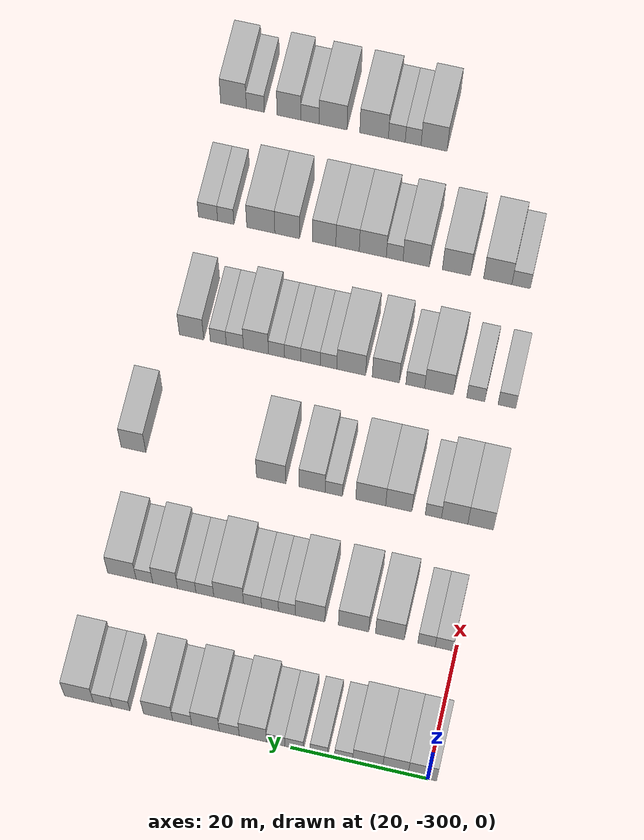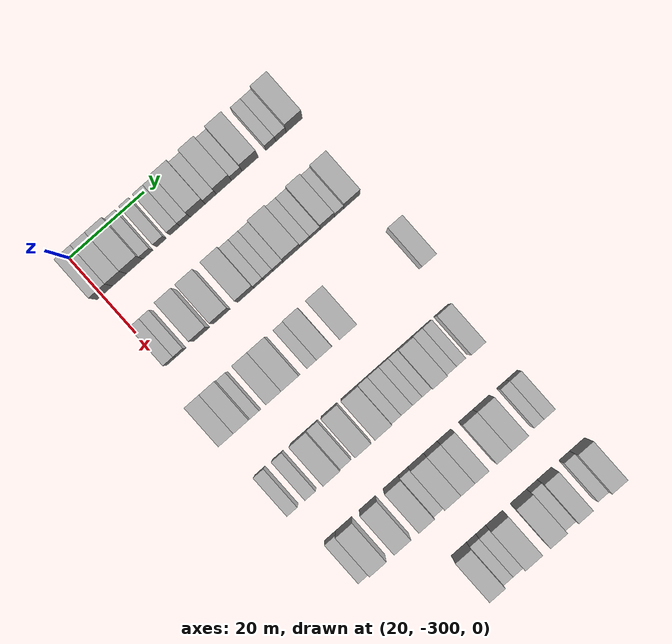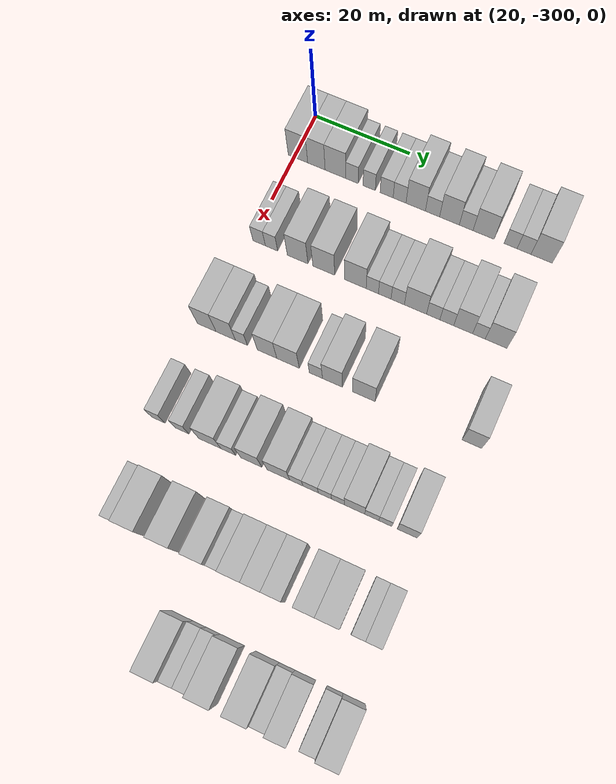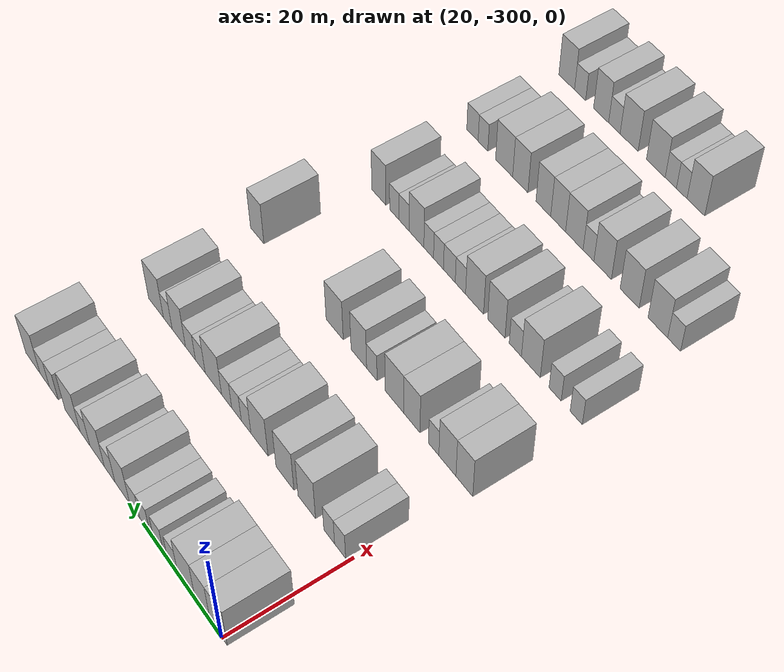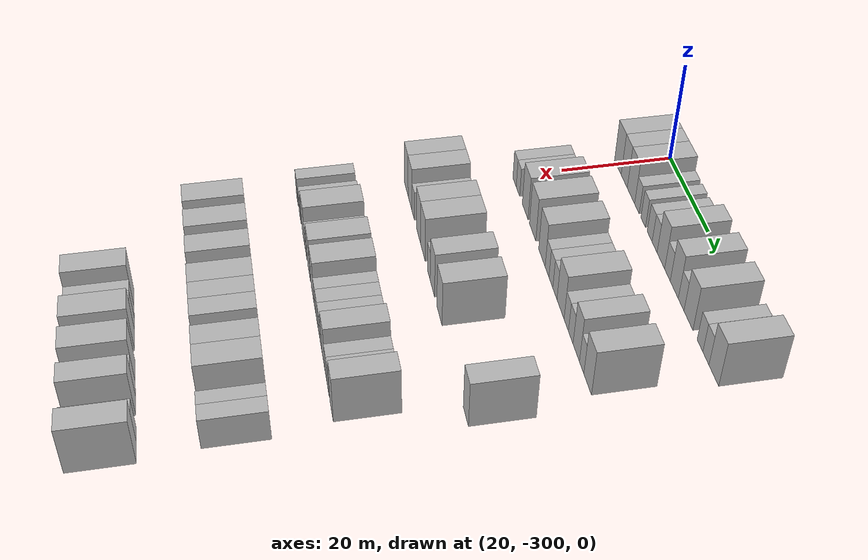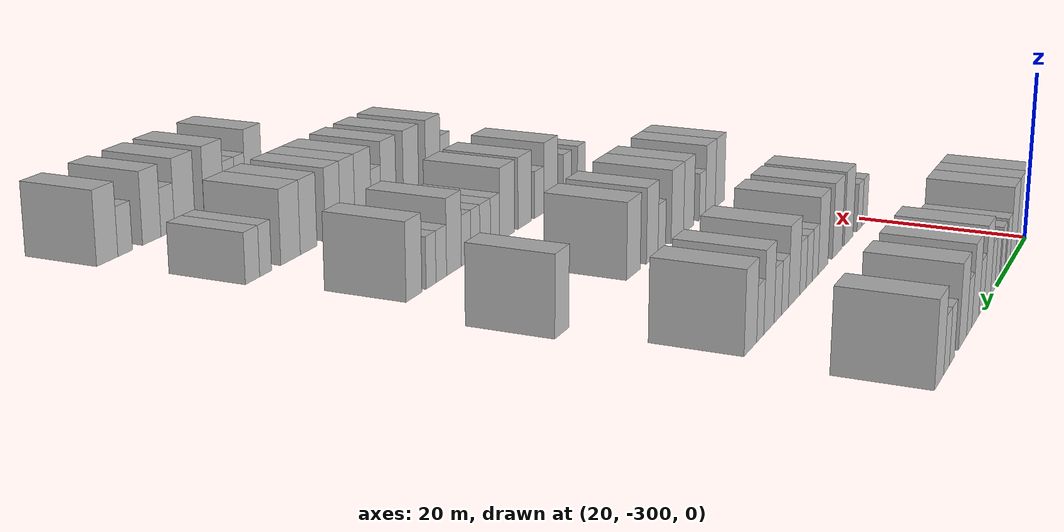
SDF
<sdf version="1.6">
 <world name="default">
  <model name="building_10">
   <static>1</static>
   <pose>25.0000 -299.1672 0 0.000000 0.000000 0.000000</pose>
   <link name="link">
    <pose>0 0 4.50 0 0 0</pose>
    <collision name="collision"><geometry><box><size>10.0000 4.1476 9.0000</size></box></geometry></collision>
    <visual name="visual">
     <cast_shadows>0</cast_shadows>
     <geometry><box><size>10.0000 4.1476 9.0000</size></box></geometry>
     <material>
      <script>
       <uri>model://HANNAS_wall/materials/scripts</uri>
       <uri>model://HANNAS_wall/materials/textures</uri>
       <name>vrc/HANNAS_wall</name>
      </script>
     </material>
    </visual>
   </link>
  </model>
  <model name="building_11">
   <static>1</static>
   <pose>25.0000 -295.2406 0 0.000000 0.000000 0.000000</pose>
   <link name="link">
    <pose>0 0 4.50 0 0 0</pose>
    <collision name="collision"><geometry><box><size>10.0000 3.7056 9.0000</size></box></geometry></collision>
    <visual name="visual">
     <cast_shadows>0</cast_shadows>
     <geometry><box><size>10.0000 3.7056 9.0000</size></box></geometry>
     <material>
      <script>
       <uri>model://HANNAS_wall/materials/scripts</uri>
       <uri>model://HANNAS_wall/materials/textures</uri>
       <name>vrc/HANNAS_wall</name>
      </script>
     </material>
    </visual>
   </link>
  </model>
  <model name="building_12">
   <static>1</static>
   <pose>25.0000 -291.1981 0 0.000000 0.000000 0.000000</pose>
   <link name="link">
    <pose>0 0 4.50 0 0 0</pose>
    <collision name="collision"><geometry><box><size>10.0000 4.3795 9.0000</size></box></geometry></collision>
    <visual name="visual">
     <cast_shadows>0</cast_shadows>
     <geometry><box><size>10.0000 4.3795 9.0000</size></box></geometry>
     <material>
      <script>
       <uri>model://HANNAS_wall/materials/scripts</uri>
       <uri>model://HANNAS_wall/materials/textures</uri>
       <name>vrc/HANNAS_wall</name>
      </script>
     </material>
    </visual>
   </link>
  </model>
  <model name="building_13">
   <static>1</static>
   <pose>25.0000 -287.6931 0 0.000000 0.000000 0.000000</pose>
   <link name="link">
    <pose>0 0 3.00 0 0 0</pose>
    <collision name="collision"><geometry><box><size>10.0000 2.6304 6.0000</size></box></geometry></collision>
    <visual name="visual">
     <cast_shadows>0</cast_shadows>
     <geometry><box><size>10.0000 2.6304 6.0000</size></box></geometry>
     <material>
      <script>
       <uri>model://HANNAS_wall/materials/scripts</uri>
       <uri>model://HANNAS_wall/materials/textures</uri>
       <name>vrc/HANNAS_wall</name>
      </script>
     </material>
    </visual>
   </link>
  </model>
  <model name="building_14">
   <static>1</static>
   <pose>25.0000 -284.0967 0 0.000000 0.000000 0.000000</pose>
   <link name="link">
    <pose>0 0 3.00 0 0 0</pose>
    <collision name="collision"><geometry><box><size>10.0000 2.5624 6.0000</size></box></geometry></collision>
    <visual name="visual">
     <cast_shadows>0</cast_shadows>
     <geometry><box><size>10.0000 2.5624 6.0000</size></box></geometry>
     <material>
      <script>
       <uri>model://HANNAS_wall/materials/scripts</uri>
       <uri>model://HANNAS_wall/materials/textures</uri>
       <name>vrc/HANNAS_wall</name>
      </script>
     </material>
    </visual>
   </link>
  </model>
  <model name="building_15">
   <static>1</static>
   <pose>25.0000 -280.4607 0 0.000000 0.000000 0.000000</pose>
   <link name="link">
    <pose>0 0 3.00 0 0 0</pose>
    <collision name="collision"><geometry><box><size>10.0000 2.7096 6.0000</size></box></geometry></collision>
    <visual name="visual">
     <cast_shadows>0</cast_shadows>
     <geometry><box><size>10.0000 2.7096 6.0000</size></box></geometry>
     <material>
      <script>
       <uri>model://HANNAS_wall/materials/scripts</uri>
       <uri>model://HANNAS_wall/materials/textures</uri>
       <name>vrc/HANNAS_wall</name>
      </script>
     </material>
    </visual>
   </link>
  </model>
  <model name="building_16">
   <static>1</static>
   <pose>25.0000 -277.7603 0 0.000000 0.000000 0.000000</pose>
   <link name="link">
    <pose>0 0 3.00 0 0 0</pose>
    <collision name="collision"><geometry><box><size>10.0000 2.6912 6.0000</size></box></geometry></collision>
    <visual name="visual">
     <cast_shadows>0</cast_shadows>
     <geometry><box><size>10.0000 2.6912 6.0000</size></box></geometry>
     <material>
      <script>
       <uri>model://HANNAS_wall/materials/scripts</uri>
       <uri>model://HANNAS_wall/materials/textures</uri>
       <name>vrc/HANNAS_wall</name>
      </script>
     </material>
    </visual>
   </link>
  </model>
  <model name="building_17">
   <static>1</static>
   <pose>25.0000 -274.4151 0 0.000000 0.000000 0.000000</pose>
   <link name="link">
    <pose>0 0 4.50 0 0 0</pose>
    <collision name="collision"><geometry><box><size>10.0000 3.9991 9.0000</size></box></geometry></collision>
    <visual name="visual">
     <cast_shadows>0</cast_shadows>
     <geometry><box><size>10.0000 3.9991 9.0000</size></box></geometry>
     <material>
      <script>
       <uri>model://HANNAS_wall/materials/scripts</uri>
       <uri>model://HANNAS_wall/materials/textures</uri>
       <name>vrc/HANNAS_wall</name>
      </script>
     </material>
    </visual>
   </link>
  </model>
  <model name="building_18">
   <static>1</static>
   <pose>25.0000 -270.9546 0 0.000000 0.000000 0.000000</pose>
   <link name="link">
    <pose>0 0 3.00 0 0 0</pose>
    <collision name="collision"><geometry><box><size>10.0000 2.9220 6.0000</size></box></geometry></collision>
    <visual name="visual">
     <cast_shadows>0</cast_shadows>
     <geometry><box><size>10.0000 2.9220 6.0000</size></box></geometry>
     <material>
      <script>
       <uri>model://HANNAS_wall/materials/scripts</uri>
       <uri>model://HANNAS_wall/materials/textures</uri>
       <name>vrc/HANNAS_wall</name>
      </script>
     </material>
    </visual>
   </link>
  </model>
  <model name="building_19">
   <static>1</static>
   <pose>25.0000 -267.4674 0 0.000000 0.000000 0.000000</pose>
   <link name="link">
    <pose>0 0 4.50 0 0 0</pose>
    <collision name="collision"><geometry><box><size>10.0000 4.0524 9.0000</size></box></geometry></collision>
    <visual name="visual">
     <cast_shadows>0</cast_shadows>
     <geometry><box><size>10.0000 4.0524 9.0000</size></box></geometry>
     <material>
      <script>
       <uri>model://HANNAS_wall/materials/scripts</uri>
       <uri>model://HANNAS_wall/materials/textures</uri>
       <name>vrc/HANNAS_wall</name>
      </script>
     </material>
    </visual>
   </link>
  </model>
  <model name="building_20">
   <static>1</static>
   <pose>25.0000 -264.0373 0 0.000000 0.000000 0.000000</pose>
   <link name="link">
    <pose>0 0 3.00 0 0 0</pose>
    <collision name="collision"><geometry><box><size>10.0000 2.8078 6.0000</size></box></geometry></collision>
    <visual name="visual">
     <cast_shadows>0</cast_shadows>
     <geometry><box><size>10.0000 2.8078 6.0000</size></box></geometry>
     <material>
      <script>
       <uri>model://HANNAS_wall/materials/scripts</uri>
       <uri>model://HANNAS_wall/materials/textures</uri>
       <name>vrc/HANNAS_wall</name>
      </script>
     </material>
    </visual>
   </link>
  </model>
  <model name="building_21">
   <static>1</static>
   <pose>25.0000 -260.4896 0 0.000000 0.000000 0.000000</pose>
   <link name="link">
    <pose>0 0 4.50 0 0 0</pose>
    <collision name="collision"><geometry><box><size>10.0000 4.2876 9.0000</size></box></geometry></collision>
    <visual name="visual">
     <cast_shadows>0</cast_shadows>
     <geometry><box><size>10.0000 4.2876 9.0000</size></box></geometry>
     <material>
      <script>
       <uri>model://HANNAS_wall/materials/scripts</uri>
       <uri>model://HANNAS_wall/materials/textures</uri>
       <name>vrc/HANNAS_wall</name>
      </script>
     </material>
    </visual>
   </link>
  </model>
  <model name="building_22">
   <static>1</static>
   <pose>25.0000 -255.0336 0 0.000000 0.000000 0.000000</pose>
   <link name="link">
    <pose>0 0 3.00 0 0 0</pose>
    <collision name="collision"><geometry><box><size>10.0000 2.6244 6.0000</size></box></geometry></collision>
    <visual name="visual">
     <cast_shadows>0</cast_shadows>
     <geometry><box><size>10.0000 2.6244 6.0000</size></box></geometry>
     <material>
      <script>
       <uri>model://HANNAS_wall/materials/scripts</uri>
       <uri>model://HANNAS_wall/materials/textures</uri>
       <name>vrc/HANNAS_wall</name>
      </script>
     </material>
    </visual>
   </link>
  </model>
  <model name="building_23">
   <static>1</static>
   <pose>25.0000 -252.3380 0 0.000000 0.000000 0.000000</pose>
   <link name="link">
    <pose>0 0 3.00 0 0 0</pose>
    <collision name="collision"><geometry><box><size>10.0000 2.7667 6.0000</size></box></geometry></collision>
    <visual name="visual">
     <cast_shadows>0</cast_shadows>
     <geometry><box><size>10.0000 2.7667 6.0000</size></box></geometry>
     <material>
      <script>
       <uri>model://HANNAS_wall/materials/scripts</uri>
       <uri>model://HANNAS_wall/materials/textures</uri>
       <name>vrc/HANNAS_wall</name>
      </script>
     </material>
    </visual>
   </link>
  </model>
  <model name="building_24">
   <static>1</static>
   <pose>25.0000 -248.8088 0 0.000000 0.000000 0.000000</pose>
   <link name="link">
    <pose>0 0 4.50 0 0 0</pose>
    <collision name="collision"><geometry><box><size>10.0000 4.2918 9.0000</size></box></geometry></collision>
    <visual name="visual">
     <cast_shadows>0</cast_shadows>
     <geometry><box><size>10.0000 4.2918 9.0000</size></box></geometry>
     <material>
      <script>
       <uri>model://HANNAS_wall/materials/scripts</uri>
       <uri>model://HANNAS_wall/materials/textures</uri>
       <name>vrc/HANNAS_wall</name>
      </script>
     </material>
    </visual>
   </link>
  </model>
  <model name="building_179">
   <static>1</static>
   <pose>44.0000 -298.2036 0 0.000000 0.000000 0.000000</pose>
   <link name="link">
    <pose>0 0 3.00 0 0 0</pose>
    <collision name="collision"><geometry><box><size>10.0000 2.6060 6.0000</size></box></geometry></collision>
    <visual name="visual">
     <cast_shadows>0</cast_shadows>
     <geometry><box><size>10.0000 2.6060 6.0000</size></box></geometry>
     <material>
      <script>
       <uri>model://HANNAS_wall/materials/scripts</uri>
       <uri>model://HANNAS_wall/materials/textures</uri>
       <name>vrc/HANNAS_wall</name>
      </script>
     </material>
    </visual>
   </link>
  </model>
  <model name="building_180">
   <static>1</static>
   <pose>44.0000 -295.6221 0 0.000000 0.000000 0.000000</pose>
   <link name="link">
    <pose>0 0 3.00 0 0 0</pose>
    <collision name="collision"><geometry><box><size>10.0000 2.5569 6.0000</size></box></geometry></collision>
    <visual name="visual">
     <cast_shadows>0</cast_shadows>
     <geometry><box><size>10.0000 2.5569 6.0000</size></box></geometry>
     <material>
      <script>
       <uri>model://HANNAS_wall/materials/scripts</uri>
       <uri>model://HANNAS_wall/materials/textures</uri>
       <name>vrc/HANNAS_wall</name>
      </script>
     </material>
    </visual>
   </link>
  </model>
  <model name="building_181">
   <static>1</static>
   <pose>44.0000 -290.2109 0 0.000000 0.000000 0.000000</pose>
   <link name="link">
    <pose>0 0 4.50 0 0 0</pose>
    <collision name="collision"><geometry><box><size>10.0000 4.2654 9.0000</size></box></geometry></collision>
    <visual name="visual">
     <cast_shadows>0</cast_shadows>
     <geometry><box><size>10.0000 4.2654 9.0000</size></box></geometry>
     <material>
      <script>
       <uri>model://HANNAS_wall/materials/scripts</uri>
       <uri>model://HANNAS_wall/materials/textures</uri>
       <name>vrc/HANNAS_wall</name>
      </script>
     </material>
    </visual>
   </link>
  </model>
  <model name="building_182">
   <static>1</static>
   <pose>44.0000 -284.8339 0 0.000000 0.000000 0.000000</pose>
   <link name="link">
    <pose>0 0 4.50 0 0 0</pose>
    <collision name="collision"><geometry><box><size>10.0000 4.4886 9.0000</size></box></geometry></collision>
    <visual name="visual">
     <cast_shadows>0</cast_shadows>
     <geometry><box><size>10.0000 4.4886 9.0000</size></box></geometry>
     <material>
      <script>
       <uri>model://HANNAS_wall/materials/scripts</uri>
       <uri>model://HANNAS_wall/materials/textures</uri>
       <name>vrc/HANNAS_wall</name>
      </script>
     </material>
    </visual>
   </link>
  </model>
  <model name="building_183">
   <static>1</static>
   <pose>44.0000 -278.3911 0 0.000000 0.000000 0.000000</pose>
   <link name="link">
    <pose>0 0 4.50 0 0 0</pose>
    <collision name="collision"><geometry><box><size>10.0000 4.3970 9.0000</size></box></geometry></collision>
    <visual name="visual">
     <cast_shadows>0</cast_shadows>
     <geometry><box><size>10.0000 4.3970 9.0000</size></box></geometry>
     <material>
      <script>
       <uri>model://HANNAS_wall/materials/scripts</uri>
       <uri>model://HANNAS_wall/materials/textures</uri>
       <name>vrc/HANNAS_wall</name>
      </script>
     </material>
    </visual>
   </link>
  </model>
  <model name="building_184">
   <static>1</static>
   <pose>44.0000 -274.9484 0 0.000000 0.000000 0.000000</pose>
   <link name="link">
    <pose>0 0 3.00 0 0 0</pose>
    <collision name="collision"><geometry><box><size>10.0000 2.4883 6.0000</size></box></geometry></collision>
    <visual name="visual">
     <cast_shadows>0</cast_shadows>
     <geometry><box><size>10.0000 2.4883 6.0000</size></box></geometry>
     <material>
      <script>
       <uri>model://HANNAS_wall/materials/scripts</uri>
       <uri>model://HANNAS_wall/materials/textures</uri>
       <name>vrc/HANNAS_wall</name>
      </script>
     </material>
    </visual>
   </link>
  </model>
  <model name="building_185">
   <static>1</static>
   <pose>44.0000 -272.4380 0 0.000000 0.000000 0.000000</pose>
   <link name="link">
    <pose>0 0 3.00 0 0 0</pose>
    <collision name="collision"><geometry><box><size>10.0000 2.5325 6.0000</size></box></geometry></collision>
    <visual name="visual">
     <cast_shadows>0</cast_shadows>
     <geometry><box><size>10.0000 2.5325 6.0000</size></box></geometry>
     <material>
      <script>
       <uri>model://HANNAS_wall/materials/scripts</uri>
       <uri>model://HANNAS_wall/materials/textures</uri>
       <name>vrc/HANNAS_wall</name>
      </script>
     </material>
    </visual>
   </link>
  </model>
  <model name="building_186">
   <static>1</static>
   <pose>44.0000 -269.8330 0 0.000000 0.000000 0.000000</pose>
   <link name="link">
    <pose>0 0 3.00 0 0 0</pose>
    <collision name="collision"><geometry><box><size>10.0000 2.6775 6.0000</size></box></geometry></collision>
    <visual name="visual">
     <cast_shadows>0</cast_shadows>
     <geometry><box><size>10.0000 2.6775 6.0000</size></box></geometry>
     <material>
      <script>
       <uri>model://HANNAS_wall/materials/scripts</uri>
       <uri>model://HANNAS_wall/materials/textures</uri>
       <name>vrc/HANNAS_wall</name>
      </script>
     </material>
    </visual>
   </link>
  </model>
  <model name="building_187">
   <static>1</static>
   <pose>44.0000 -266.2800 0 0.000000 0.000000 0.000000</pose>
   <link name="link">
    <pose>0 0 4.50 0 0 0</pose>
    <collision name="collision"><geometry><box><size>10.0000 4.4284 9.0000</size></box></geometry></collision>
    <visual name="visual">
     <cast_shadows>0</cast_shadows>
     <geometry><box><size>10.0000 4.4284 9.0000</size></box></geometry>
     <material>
      <script>
       <uri>model://HANNAS_wall/materials/scripts</uri>
       <uri>model://HANNAS_wall/materials/textures</uri>
       <name>vrc/HANNAS_wall</name>
      </script>
     </material>
    </visual>
   </link>
  </model>
  <model name="building_188">
   <static>1</static>
   <pose>44.0000 -262.7367 0 0.000000 0.000000 0.000000</pose>
   <link name="link">
    <pose>0 0 3.00 0 0 0</pose>
    <collision name="collision"><geometry><box><size>10.0000 2.6582 6.0000</size></box></geometry></collision>
    <visual name="visual">
     <cast_shadows>0</cast_shadows>
     <geometry><box><size>10.0000 2.6582 6.0000</size></box></geometry>
     <material>
      <script>
       <uri>model://HANNAS_wall/materials/scripts</uri>
       <uri>model://HANNAS_wall/materials/textures</uri>
       <name>vrc/HANNAS_wall</name>
      </script>
     </material>
    </visual>
   </link>
  </model>
  <model name="building_189">
   <static>1</static>
   <pose>44.0000 -260.0378 0 0.000000 0.000000 0.000000</pose>
   <link name="link">
    <pose>0 0 3.00 0 0 0</pose>
    <collision name="collision"><geometry><box><size>10.0000 2.7396 6.0000</size></box></geometry></collision>
    <visual name="visual">
     <cast_shadows>0</cast_shadows>
     <geometry><box><size>10.0000 2.7396 6.0000</size></box></geometry>
     <material>
      <script>
       <uri>model://HANNAS_wall/materials/scripts</uri>
       <uri>model://HANNAS_wall/materials/textures</uri>
       <name>vrc/HANNAS_wall</name>
      </script>
     </material>
    </visual>
   </link>
  </model>
  <model name="building_190">
   <static>1</static>
   <pose>44.0000 -256.8052 0 0.000000 0.000000 0.000000</pose>
   <link name="link">
    <pose>0 0 4.50 0 0 0</pose>
    <collision name="collision"><geometry><box><size>10.0000 3.7256 9.0000</size></box></geometry></collision>
    <visual name="visual">
     <cast_shadows>0</cast_shadows>
     <geometry><box><size>10.0000 3.7256 9.0000</size></box></geometry>
     <material>
      <script>
       <uri>model://HANNAS_wall/materials/scripts</uri>
       <uri>model://HANNAS_wall/materials/textures</uri>
       <name>vrc/HANNAS_wall</name>
      </script>
     </material>
    </visual>
   </link>
  </model>
  <model name="building_191">
   <static>1</static>
   <pose>44.0000 -253.6993 0 0.000000 0.000000 0.000000</pose>
   <link name="link">
    <pose>0 0 3.00 0 0 0</pose>
    <collision name="collision"><geometry><box><size>10.0000 2.4863 6.0000</size></box></geometry></collision>
    <visual name="visual">
     <cast_shadows>0</cast_shadows>
     <geometry><box><size>10.0000 2.4863 6.0000</size></box></geometry>
     <material>
      <script>
       <uri>model://HANNAS_wall/materials/scripts</uri>
       <uri>model://HANNAS_wall/materials/textures</uri>
       <name>vrc/HANNAS_wall</name>
      </script>
     </material>
    </visual>
   </link>
  </model>
  <model name="building_192">
   <static>1</static>
   <pose>44.0000 -250.3234 0 0.000000 0.000000 0.000000</pose>
   <link name="link">
    <pose>0 0 4.50 0 0 0</pose>
    <collision name="collision"><geometry><box><size>10.0000 4.2654 9.0000</size></box></geometry></collision>
    <visual name="visual">
     <cast_shadows>0</cast_shadows>
     <geometry><box><size>10.0000 4.2654 9.0000</size></box></geometry>
     <material>
      <script>
       <uri>model://HANNAS_wall/materials/scripts</uri>
       <uri>model://HANNAS_wall/materials/textures</uri>
       <name>vrc/HANNAS_wall</name>
      </script>
     </material>
    </visual>
   </link>
  </model>
  <model name="building_345">
   <static>1</static>
   <pose>63.0000 -299.5491 0 0.000000 0.000000 0.000000</pose>
   <link name="link">
    <pose>0 0 4.50 0 0 0</pose>
    <collision name="collision"><geometry><box><size>10.0000 3.8207 9.0000</size></box></geometry></collision>
    <visual name="visual">
     <cast_shadows>0</cast_shadows>
     <geometry><box><size>10.0000 3.8207 9.0000</size></box></geometry>
     <material>
      <script>
       <uri>model://HANNAS_wall/materials/scripts</uri>
       <uri>model://HANNAS_wall/materials/textures</uri>
       <name>vrc/HANNAS_wall</name>
      </script>
     </material>
    </visual>
   </link>
  </model>
  <model name="building_346">
   <static>1</static>
   <pose>63.0000 -295.6691 0 0.000000 0.000000 0.000000</pose>
   <link name="link">
    <pose>0 0 4.50 0 0 0</pose>
    <collision name="collision"><geometry><box><size>10.0000 3.9393 9.0000</size></box></geometry></collision>
    <visual name="visual">
     <cast_shadows>0</cast_shadows>
     <geometry><box><size>10.0000 3.9393 9.0000</size></box></geometry>
     <material>
      <script>
       <uri>model://HANNAS_wall/materials/scripts</uri>
       <uri>model://HANNAS_wall/materials/textures</uri>
       <name>vrc/HANNAS_wall</name>
      </script>
     </material>
    </visual>
   </link>
  </model>
  <model name="building_347">
   <static>1</static>
   <pose>63.0000 -292.4841 0 0.000000 0.000000 0.000000</pose>
   <link name="link">
    <pose>0 0 3.00 0 0 0</pose>
    <collision name="collision"><geometry><box><size>10.0000 2.4308 6.0000</size></box></geometry></collision>
    <visual name="visual">
     <cast_shadows>0</cast_shadows>
     <geometry><box><size>10.0000 2.4308 6.0000</size></box></geometry>
     <material>
      <script>
       <uri>model://HANNAS_wall/materials/scripts</uri>
       <uri>model://HANNAS_wall/materials/textures</uri>
       <name>vrc/HANNAS_wall</name>
      </script>
     </material>
    </visual>
   </link>
  </model>
  <model name="building_348">
   <static>1</static>
   <pose>63.0000 -287.3083 0 0.000000 0.000000 0.000000</pose>
   <link name="link">
    <pose>0 0 4.50 0 0 0</pose>
    <collision name="collision"><geometry><box><size>10.0000 3.9208 9.0000</size></box></geometry></collision>
    <visual name="visual">
     <cast_shadows>0</cast_shadows>
     <geometry><box><size>10.0000 3.9208 9.0000</size></box></geometry>
     <material>
      <script>
       <uri>model://HANNAS_wall/materials/scripts</uri>
       <uri>model://HANNAS_wall/materials/textures</uri>
       <name>vrc/HANNAS_wall</name>
      </script>
     </material>
    </visual>
   </link>
  </model>
  <model name="building_349">
   <static>1</static>
   <pose>63.0000 -283.1010 0 0.000000 0.000000 0.000000</pose>
   <link name="link">
    <pose>0 0 4.50 0 0 0</pose>
    <collision name="collision"><geometry><box><size>10.0000 4.4937 9.0000</size></box></geometry></collision>
    <visual name="visual">
     <cast_shadows>0</cast_shadows>
     <geometry><box><size>10.0000 4.4937 9.0000</size></box></geometry>
     <material>
      <script>
       <uri>model://HANNAS_wall/materials/scripts</uri>
       <uri>model://HANNAS_wall/materials/textures</uri>
       <name>vrc/HANNAS_wall</name>
      </script>
     </material>
    </visual>
   </link>
  </model>
  <model name="building_350">
   <static>1</static>
   <pose>63.0000 -277.5530 0 0.000000 0.000000 0.000000</pose>
   <link name="link">
    <pose>0 0 3.00 0 0 0</pose>
    <collision name="collision"><geometry><box><size>10.0000 2.6022 6.0000</size></box></geometry></collision>
    <visual name="visual">
     <cast_shadows>0</cast_shadows>
     <geometry><box><size>10.0000 2.6022 6.0000</size></box></geometry>
     <material>
      <script>
       <uri>model://HANNAS_wall/materials/scripts</uri>
       <uri>model://HANNAS_wall/materials/textures</uri>
       <name>vrc/HANNAS_wall</name>
      </script>
     </material>
    </visual>
   </link>
  </model>
  <model name="building_351">
   <static>1</static>
   <pose>63.0000 -274.2897 0 0.000000 0.000000 0.000000</pose>
   <link name="link">
    <pose>0 0 4.50 0 0 0</pose>
    <collision name="collision"><geometry><box><size>10.0000 3.9245 9.0000</size></box></geometry></collision>
    <visual name="visual">
     <cast_shadows>0</cast_shadows>
     <geometry><box><size>10.0000 3.9245 9.0000</size></box></geometry>
     <material>
      <script>
       <uri>model://HANNAS_wall/materials/scripts</uri>
       <uri>model://HANNAS_wall/materials/textures</uri>
       <name>vrc/HANNAS_wall</name>
      </script>
     </material>
    </visual>
   </link>
  </model>
  <model name="building_352">
   <static>1</static>
   <pose>63.0000 -268.1138 0 0.000000 0.000000 0.000000</pose>
   <link name="link">
    <pose>0 0 4.50 0 0 0</pose>
    <collision name="collision"><geometry><box><size>10.0000 4.4272 9.0000</size></box></geometry></collision>
    <visual name="visual">
     <cast_shadows>0</cast_shadows>
     <geometry><box><size>10.0000 4.4272 9.0000</size></box></geometry>
     <material>
      <script>
       <uri>model://HANNAS_wall/materials/scripts</uri>
       <uri>model://HANNAS_wall/materials/textures</uri>
       <name>vrc/HANNAS_wall</name>
      </script>
     </material>
    </visual>
   </link>
  </model>
  <model name="building_353">
   <static>1</static>
   <pose>63.0000 -247.2678 0 0.000000 0.000000 0.000000</pose>
   <link name="link">
    <pose>0 0 4.50 0 0 0</pose>
    <collision name="collision"><geometry><box><size>10.0000 3.7549 9.0000</size></box></geometry></collision>
    <visual name="visual">
     <cast_shadows>0</cast_shadows>
     <geometry><box><size>10.0000 3.7549 9.0000</size></box></geometry>
     <material>
      <script>
       <uri>model://HANNAS_wall/materials/scripts</uri>
       <uri>model://HANNAS_wall/materials/textures</uri>
       <name>vrc/HANNAS_wall</name>
      </script>
     </material>
    </visual>
   </link>
  </model>
  <model name="building_508">
   <static>1</static>
   <pose>82.0000 -299.4960 0 0.000000 0.000000 0.000000</pose>
   <link name="link">
    <pose>0 0 3.00 0 0 0</pose>
    <collision name="collision"><geometry><box><size>10.0000 2.6908 6.0000</size></box></geometry></collision>
    <visual name="visual">
     <cast_shadows>0</cast_shadows>
     <geometry><box><size>10.0000 2.6908 6.0000</size></box></geometry>
     <material>
      <script>
       <uri>model://HANNAS_wall/materials/scripts</uri>
       <uri>model://HANNAS_wall/materials/textures</uri>
       <name>vrc/HANNAS_wall</name>
      </script>
     </material>
    </visual>
   </link>
  </model>
  <model name="building_509">
   <static>1</static>
   <pose>82.0000 -294.7761 0 0.000000 0.000000 0.000000</pose>
   <link name="link">
    <pose>0 0 3.00 0 0 0</pose>
    <collision name="collision"><geometry><box><size>10.0000 2.7492 6.0000</size></box></geometry></collision>
    <visual name="visual">
     <cast_shadows>0</cast_shadows>
     <geometry><box><size>10.0000 2.7492 6.0000</size></box></geometry>
     <material>
      <script>
       <uri>model://HANNAS_wall/materials/scripts</uri>
       <uri>model://HANNAS_wall/materials/textures</uri>
       <name>vrc/HANNAS_wall</name>
      </script>
     </material>
    </visual>
   </link>
  </model>
  <model name="building_510">
   <static>1</static>
   <pose>82.0000 -289.2181 0 0.000000 0.000000 0.000000</pose>
   <link name="link">
    <pose>0 0 4.50 0 0 0</pose>
    <collision name="collision"><geometry><box><size>10.0000 4.3669 9.0000</size></box></geometry></collision>
    <visual name="visual">
     <cast_shadows>0</cast_shadows>
     <geometry><box><size>10.0000 4.3669 9.0000</size></box></geometry>
     <material>
      <script>
       <uri>model://HANNAS_wall/materials/scripts</uri>
       <uri>model://HANNAS_wall/materials/textures</uri>
       <name>vrc/HANNAS_wall</name>
      </script>
     </material>
    </visual>
   </link>
  </model>
  <model name="building_511">
   <static>1</static>
   <pose>82.0000 -285.6026 0 0.000000 0.000000 0.000000</pose>
   <link name="link">
    <pose>0 0 3.00 0 0 0</pose>
    <collision name="collision"><geometry><box><size>10.0000 2.8640 6.0000</size></box></geometry></collision>
    <visual name="visual">
     <cast_shadows>0</cast_shadows>
     <geometry><box><size>10.0000 2.8640 6.0000</size></box></geometry>
     <material>
      <script>
       <uri>model://HANNAS_wall/materials/scripts</uri>
       <uri>model://HANNAS_wall/materials/textures</uri>
       <name>vrc/HANNAS_wall</name>
      </script>
     </material>
    </visual>
   </link>
  </model>
  <model name="building_512">
   <static>1</static>
   <pose>82.0000 -281.1085 0 0.000000 0.000000 0.000000</pose>
   <link name="link">
    <pose>0 0 4.50 0 0 0</pose>
    <collision name="collision"><geometry><box><size>10.0000 4.1243 9.0000</size></box></geometry></collision>
    <visual name="visual">
     <cast_shadows>0</cast_shadows>
     <geometry><box><size>10.0000 4.1243 9.0000</size></box></geometry>
     <material>
      <script>
       <uri>model://HANNAS_wall/materials/scripts</uri>
       <uri>model://HANNAS_wall/materials/textures</uri>
       <name>vrc/HANNAS_wall</name>
      </script>
     </material>
    </visual>
   </link>
  </model>
  <model name="building_513">
   <static>1</static>
   <pose>82.0000 -275.8534 0 0.000000 0.000000 0.000000</pose>
   <link name="link">
    <pose>0 0 4.50 0 0 0</pose>
    <collision name="collision"><geometry><box><size>10.0000 4.3859 9.0000</size></box></geometry></collision>
    <visual name="visual">
     <cast_shadows>0</cast_shadows>
     <geometry><box><size>10.0000 4.3859 9.0000</size></box></geometry>
     <material>
      <script>
       <uri>model://HANNAS_wall/materials/scripts</uri>
       <uri>model://HANNAS_wall/materials/textures</uri>
       <name>vrc/HANNAS_wall</name>
      </script>
     </material>
    </visual>
   </link>
  </model>
  <model name="building_514">
   <static>1</static>
   <pose>82.0000 -272.3850 0 0.000000 0.000000 0.000000</pose>
   <link name="link">
    <pose>0 0 3.00 0 0 0</pose>
    <collision name="collision"><geometry><box><size>10.0000 2.5508 6.0000</size></box></geometry></collision>
    <visual name="visual">
     <cast_shadows>0</cast_shadows>
     <geometry><box><size>10.0000 2.5508 6.0000</size></box></geometry>
     <material>
      <script>
       <uri>model://HANNAS_wall/materials/scripts</uri>
       <uri>model://HANNAS_wall/materials/textures</uri>
       <name>vrc/HANNAS_wall</name>
      </script>
     </material>
    </visual>
   </link>
  </model>
  <model name="building_515">
   <static>1</static>
   <pose>82.0000 -269.6396 0 0.000000 0.000000 0.000000</pose>
   <link name="link">
    <pose>0 0 3.00 0 0 0</pose>
    <collision name="collision"><geometry><box><size>10.0000 2.9401 6.0000</size></box></geometry></collision>
    <visual name="visual">
     <cast_shadows>0</cast_shadows>
     <geometry><box><size>10.0000 2.9401 6.0000</size></box></geometry>
     <material>
      <script>
       <uri>model://HANNAS_wall/materials/scripts</uri>
       <uri>model://HANNAS_wall/materials/textures</uri>
       <name>vrc/HANNAS_wall</name>
      </script>
     </material>
    </visual>
   </link>
  </model>
  <model name="building_516">
   <static>1</static>
   <pose>82.0000 -266.9197 0 0.000000 0.000000 0.000000</pose>
   <link name="link">
    <pose>0 0 3.00 0 0 0</pose>
    <collision name="collision"><geometry><box><size>10.0000 2.4998 6.0000</size></box></geometry></collision>
    <visual name="visual">
     <cast_shadows>0</cast_shadows>
     <geometry><box><size>10.0000 2.4998 6.0000</size></box></geometry>
     <material>
      <script>
       <uri>model://HANNAS_wall/materials/scripts</uri>
       <uri>model://HANNAS_wall/materials/textures</uri>
       <name>vrc/HANNAS_wall</name>
      </script>
     </material>
    </visual>
   </link>
  </model>
  <model name="building_517">
   <static>1</static>
   <pose>82.0000 -264.4397 0 0.000000 0.000000 0.000000</pose>
   <link name="link">
    <pose>0 0 3.00 0 0 0</pose>
    <collision name="collision"><geometry><box><size>10.0000 2.4601 6.0000</size></box></geometry></collision>
    <visual name="visual">
     <cast_shadows>0</cast_shadows>
     <geometry><box><size>10.0000 2.4601 6.0000</size></box></geometry>
     <material>
      <script>
       <uri>model://HANNAS_wall/materials/scripts</uri>
       <uri>model://HANNAS_wall/materials/textures</uri>
       <name>vrc/HANNAS_wall</name>
      </script>
     </material>
    </visual>
   </link>
  </model>
  <model name="building_518">
   <static>1</static>
   <pose>82.0000 -261.2955 0 0.000000 0.000000 0.000000</pose>
   <link name="link">
    <pose>0 0 4.50 0 0 0</pose>
    <collision name="collision"><geometry><box><size>10.0000 3.8285 9.0000</size></box></geometry></collision>
    <visual name="visual">
     <cast_shadows>0</cast_shadows>
     <geometry><box><size>10.0000 3.8285 9.0000</size></box></geometry>
     <material>
      <script>
       <uri>model://HANNAS_wall/materials/scripts</uri>
       <uri>model://HANNAS_wall/materials/textures</uri>
       <name>vrc/HANNAS_wall</name>
      </script>
     </material>
    </visual>
   </link>
  </model>
  <model name="building_519">
   <static>1</static>
   <pose>82.0000 -258.0591 0 0.000000 0.000000 0.000000</pose>
   <link name="link">
    <pose>0 0 3.00 0 0 0</pose>
    <collision name="collision"><geometry><box><size>10.0000 2.6443 6.0000</size></box></geometry></collision>
    <visual name="visual">
     <cast_shadows>0</cast_shadows>
     <geometry><box><size>10.0000 2.6443 6.0000</size></box></geometry>
     <material>
      <script>
       <uri>model://HANNAS_wall/materials/scripts</uri>
       <uri>model://HANNAS_wall/materials/textures</uri>
       <name>vrc/HANNAS_wall</name>
      </script>
     </material>
    </visual>
   </link>
  </model>
  <model name="building_520">
   <static>1</static>
   <pose>82.0000 -255.5144 0 0.000000 0.000000 0.000000</pose>
   <link name="link">
    <pose>0 0 3.00 0 0 0</pose>
    <collision name="collision"><geometry><box><size>10.0000 2.4449 6.0000</size></box></geometry></collision>
    <visual name="visual">
     <cast_shadows>0</cast_shadows>
     <geometry><box><size>10.0000 2.4449 6.0000</size></box></geometry>
     <material>
      <script>
       <uri>model://HANNAS_wall/materials/scripts</uri>
       <uri>model://HANNAS_wall/materials/textures</uri>
       <name>vrc/HANNAS_wall</name>
      </script>
     </material>
    </visual>
   </link>
  </model>
  <model name="building_521">
   <static>1</static>
   <pose>82.0000 -251.4162 0 0.000000 0.000000 0.000000</pose>
   <link name="link">
    <pose>0 0 4.50 0 0 0</pose>
    <collision name="collision"><geometry><box><size>10.0000 3.7516 9.0000</size></box></geometry></collision>
    <visual name="visual">
     <cast_shadows>0</cast_shadows>
     <geometry><box><size>10.0000 3.7516 9.0000</size></box></geometry>
     <material>
      <script>
       <uri>model://HANNAS_wall/materials/scripts</uri>
       <uri>model://HANNAS_wall/materials/textures</uri>
       <name>vrc/HANNAS_wall</name>
      </script>
     </material>
    </visual>
   </link>
  </model>
  <model name="building_686">
   <static>1</static>
   <pose>101.0000 -297.6977 0 0.000000 0.000000 0.000000</pose>
   <link name="link">
    <pose>0 0 3.00 0 0 0</pose>
    <collision name="collision"><geometry><box><size>10.0000 2.8285 6.0000</size></box></geometry></collision>
    <visual name="visual">
     <cast_shadows>0</cast_shadows>
     <geometry><box><size>10.0000 2.8285 6.0000</size></box></geometry>
     <material>
      <script>
       <uri>model://HANNAS_wall/materials/scripts</uri>
       <uri>model://HANNAS_wall/materials/textures</uri>
       <name>vrc/HANNAS_wall</name>
      </script>
     </material>
    </visual>
   </link>
  </model>
  <model name="building_687">
   <static>1</static>
   <pose>101.0000 -294.1068 0 0.000000 0.000000 0.000000</pose>
   <link name="link">
    <pose>0 0 4.50 0 0 0</pose>
    <collision name="collision"><geometry><box><size>10.0000 4.3532 9.0000</size></box></geometry></collision>
    <visual name="visual">
     <cast_shadows>0</cast_shadows>
     <geometry><box><size>10.0000 4.3532 9.0000</size></box></geometry>
     <material>
      <script>
       <uri>model://HANNAS_wall/materials/scripts</uri>
       <uri>model://HANNAS_wall/materials/textures</uri>
       <name>vrc/HANNAS_wall</name>
      </script>
     </material>
    </visual>
   </link>
  </model>
  <model name="building_688">
   <static>1</static>
   <pose>101.0000 -287.7634 0 0.000000 0.000000 0.000000</pose>
   <link name="link">
    <pose>0 0 4.50 0 0 0</pose>
    <collision name="collision"><geometry><box><size>10.0000 4.3337 9.0000</size></box></geometry></collision>
    <visual name="visual">
     <cast_shadows>0</cast_shadows>
     <geometry><box><size>10.0000 4.3337 9.0000</size></box></geometry>
     <material>
      <script>
       <uri>model://HANNAS_wall/materials/scripts</uri>
       <uri>model://HANNAS_wall/materials/textures</uri>
       <name>vrc/HANNAS_wall</name>
      </script>
     </material>
    </visual>
   </link>
  </model>
  <model name="building_689">
   <static>1</static>
   <pose>101.0000 -281.5587 0 0.000000 0.000000 0.000000</pose>
   <link name="link">
    <pose>0 0 4.50 0 0 0</pose>
    <collision name="collision"><geometry><box><size>10.0000 4.0757 9.0000</size></box></geometry></collision>
    <visual name="visual">
     <cast_shadows>0</cast_shadows>
     <geometry><box><size>10.0000 4.0757 9.0000</size></box></geometry>
     <material>
      <script>
       <uri>model://HANNAS_wall/materials/scripts</uri>
       <uri>model://HANNAS_wall/materials/textures</uri>
       <name>vrc/HANNAS_wall</name>
      </script>
     </material>
    </visual>
   </link>
  </model>
  <model name="building_690">
   <static>1</static>
   <pose>101.0000 -278.2367 0 0.000000 0.000000 0.000000</pose>
   <link name="link">
    <pose>0 0 3.00 0 0 0</pose>
    <collision name="collision"><geometry><box><size>10.0000 2.5683 6.0000</size></box></geometry></collision>
    <visual name="visual">
     <cast_shadows>0</cast_shadows>
     <geometry><box><size>10.0000 2.5683 6.0000</size></box></geometry>
     <material>
      <script>
       <uri>model://HANNAS_wall/materials/scripts</uri>
       <uri>model://HANNAS_wall/materials/textures</uri>
       <name>vrc/HANNAS_wall</name>
      </script>
     </material>
    </visual>
   </link>
  </model>
  <model name="building_691">
   <static>1</static>
   <pose>101.0000 -274.8589 0 0.000000 0.000000 0.000000</pose>
   <link name="link">
    <pose>0 0 4.50 0 0 0</pose>
    <collision name="collision"><geometry><box><size>10.0000 4.1872 9.0000</size></box></geometry></collision>
    <visual name="visual">
     <cast_shadows>0</cast_shadows>
     <geometry><box><size>10.0000 4.1872 9.0000</size></box></geometry>
     <material>
      <script>
       <uri>model://HANNAS_wall/materials/scripts</uri>
       <uri>model://HANNAS_wall/materials/textures</uri>
       <name>vrc/HANNAS_wall</name>
      </script>
     </material>
    </visual>
   </link>
  </model>
  <model name="building_692">
   <static>1</static>
   <pose>101.0000 -270.9599 0 0.000000 0.000000 0.000000</pose>
   <link name="link">
    <pose>0 0 4.50 0 0 0</pose>
    <collision name="collision"><geometry><box><size>10.0000 3.6109 9.0000</size></box></geometry></collision>
    <visual name="visual">
     <cast_shadows>0</cast_shadows>
     <geometry><box><size>10.0000 3.6109 9.0000</size></box></geometry>
     <material>
      <script>
       <uri>model://HANNAS_wall/materials/scripts</uri>
       <uri>model://HANNAS_wall/materials/textures</uri>
       <name>vrc/HANNAS_wall</name>
      </script>
     </material>
    </visual>
   </link>
  </model>
  <model name="building_693">
   <static>1</static>
   <pose>101.0000 -267.3418 0 0.000000 0.000000 0.000000</pose>
   <link name="link">
    <pose>0 0 4.50 0 0 0</pose>
    <collision name="collision"><geometry><box><size>10.0000 3.6252 9.0000</size></box></geometry></collision>
    <visual name="visual">
     <cast_shadows>0</cast_shadows>
     <geometry><box><size>10.0000 3.6252 9.0000</size></box></geometry>
     <material>
      <script>
       <uri>model://HANNAS_wall/materials/scripts</uri>
       <uri>model://HANNAS_wall/materials/textures</uri>
       <name>vrc/HANNAS_wall</name>
      </script>
     </material>
    </visual>
   </link>
  </model>
  <model name="building_694">
   <static>1</static>
   <pose>101.0000 -261.6093 0 0.000000 0.000000 0.000000</pose>
   <link name="link">
    <pose>0 0 4.50 0 0 0</pose>
    <collision name="collision"><geometry><box><size>10.0000 3.8399 9.0000</size></box></geometry></collision>
    <visual name="visual">
     <cast_shadows>0</cast_shadows>
     <geometry><box><size>10.0000 3.8399 9.0000</size></box></geometry>
     <material>
      <script>
       <uri>model://HANNAS_wall/materials/scripts</uri>
       <uri>model://HANNAS_wall/materials/textures</uri>
       <name>vrc/HANNAS_wall</name>
      </script>
     </material>
    </visual>
   </link>
  </model>
  <model name="building_695">
   <static>1</static>
   <pose>101.0000 -257.5114 0 0.000000 0.000000 0.000000</pose>
   <link name="link">
    <pose>0 0 4.50 0 0 0</pose>
    <collision name="collision"><geometry><box><size>10.0000 4.3560 9.0000</size></box></geometry></collision>
    <visual name="visual">
     <cast_shadows>0</cast_shadows>
     <geometry><box><size>10.0000 4.3560 9.0000</size></box></geometry>
     <material>
      <script>
       <uri>model://HANNAS_wall/materials/scripts</uri>
       <uri>model://HANNAS_wall/materials/textures</uri>
       <name>vrc/HANNAS_wall</name>
      </script>
     </material>
    </visual>
   </link>
  </model>
  <model name="building_696">
   <static>1</static>
   <pose>101.0000 -252.0717 0 0.000000 0.000000 0.000000</pose>
   <link name="link">
    <pose>0 0 3.00 0 0 0</pose>
    <collision name="collision"><geometry><box><size>10.0000 2.5234 6.0000</size></box></geometry></collision>
    <visual name="visual">
     <cast_shadows>0</cast_shadows>
     <geometry><box><size>10.0000 2.5234 6.0000</size></box></geometry>
     <material>
      <script>
       <uri>model://HANNAS_wall/materials/scripts</uri>
       <uri>model://HANNAS_wall/materials/textures</uri>
       <name>vrc/HANNAS_wall</name>
      </script>
     </material>
    </visual>
   </link>
  </model>
  <model name="building_697">
   <static>1</static>
   <pose>101.0000 -249.3177 0 0.000000 0.000000 0.000000</pose>
   <link name="link">
    <pose>0 0 3.00 0 0 0</pose>
    <collision name="collision"><geometry><box><size>10.0000 2.9846 6.0000</size></box></geometry></collision>
    <visual name="visual">
     <cast_shadows>0</cast_shadows>
     <geometry><box><size>10.0000 2.9846 6.0000</size></box></geometry>
     <material>
      <script>
       <uri>model://HANNAS_wall/materials/scripts</uri>
       <uri>model://HANNAS_wall/materials/textures</uri>
       <name>vrc/HANNAS_wall</name>
      </script>
     </material>
    </visual>
   </link>
  </model>
  <model name="building_858">
   <static>1</static>
   <pose>120.0000 -280.1774 0 0.000000 0.000000 0.000000</pose>
   <link name="link">
    <pose>0 0 4.50 0 0 0</pose>
    <collision name="collision"><geometry><box><size>10.0000 4.0739 9.0000</size></box></geometry></collision>
    <visual name="visual">
     <cast_shadows>0</cast_shadows>
     <geometry><box><size>10.0000 4.0739 9.0000</size></box></geometry>
     <material>
      <script>
       <uri>model://HANNAS_wall/materials/scripts</uri>
       <uri>model://HANNAS_wall/materials/textures</uri>
       <name>vrc/HANNAS_wall</name>
      </script>
     </material>
    </visual>
   </link>
  </model>
  <model name="building_859">
   <static>1</static>
   <pose>120.0000 -276.9027 0 0.000000 0.000000 0.000000</pose>
   <link name="link">
    <pose>0 0 3.00 0 0 0</pose>
    <collision name="collision"><geometry><box><size>10.0000 2.4754 6.0000</size></box></geometry></collision>
    <visual name="visual">
     <cast_shadows>0</cast_shadows>
     <geometry><box><size>10.0000 2.4754 6.0000</size></box></geometry>
     <material>
      <script>
       <uri>model://HANNAS_wall/materials/scripts</uri>
       <uri>model://HANNAS_wall/materials/textures</uri>
       <name>vrc/HANNAS_wall</name>
      </script>
     </material>
    </visual>
   </link>
  </model>
  <model name="building_860">
   <static>1</static>
   <pose>120.0000 -274.3491 0 0.000000 0.000000 0.000000</pose>
   <link name="link">
    <pose>0 0 3.00 0 0 0</pose>
    <collision name="collision"><geometry><box><size>10.0000 2.6318 6.0000</size></box></geometry></collision>
    <visual name="visual">
     <cast_shadows>0</cast_shadows>
     <geometry><box><size>10.0000 2.6318 6.0000</size></box></geometry>
     <material>
      <script>
       <uri>model://HANNAS_wall/materials/scripts</uri>
       <uri>model://HANNAS_wall/materials/textures</uri>
       <name>vrc/HANNAS_wall</name>
      </script>
     </material>
    </visual>
   </link>
  </model>
  <model name="building_861">
   <static>1</static>
   <pose>120.0000 -270.7943 0 0.000000 0.000000 0.000000</pose>
   <link name="link">
    <pose>0 0 4.50 0 0 0</pose>
    <collision name="collision"><geometry><box><size>10.0000 4.4777 9.0000</size></box></geometry></collision>
    <visual name="visual">
     <cast_shadows>0</cast_shadows>
     <geometry><box><size>10.0000 4.4777 9.0000</size></box></geometry>
     <material>
      <script>
       <uri>model://HANNAS_wall/materials/scripts</uri>
       <uri>model://HANNAS_wall/materials/textures</uri>
       <name>vrc/HANNAS_wall</name>
      </script>
     </material>
    </visual>
   </link>
  </model>
  <model name="building_862">
   <static>1</static>
   <pose>120.0000 -264.3558 0 0.000000 0.000000 0.000000</pose>
   <link name="link">
    <pose>0 0 4.50 0 0 0</pose>
    <collision name="collision"><geometry><box><size>10.0000 4.3994 9.0000</size></box></geometry></collision>
    <visual name="visual">
     <cast_shadows>0</cast_shadows>
     <geometry><box><size>10.0000 4.3994 9.0000</size></box></geometry>
     <material>
      <script>
       <uri>model://HANNAS_wall/materials/scripts</uri>
       <uri>model://HANNAS_wall/materials/textures</uri>
       <name>vrc/HANNAS_wall</name>
      </script>
     </material>
    </visual>
   </link>
  </model>
  <model name="building_863">
   <static>1</static>
   <pose>120.0000 -260.7377 0 0.000000 0.000000 0.000000</pose>
   <link name="link">
    <pose>0 0 3.00 0 0 0</pose>
    <collision name="collision"><geometry><box><size>10.0000 2.8369 6.0000</size></box></geometry></collision>
    <visual name="visual">
     <cast_shadows>0</cast_shadows>
     <geometry><box><size>10.0000 2.8369 6.0000</size></box></geometry>
     <material>
      <script>
       <uri>model://HANNAS_wall/materials/scripts</uri>
       <uri>model://HANNAS_wall/materials/textures</uri>
       <name>vrc/HANNAS_wall</name>
      </script>
     </material>
    </visual>
   </link>
  </model>
  <model name="building_864">
   <static>1</static>
   <pose>120.0000 -257.4357 0 0.000000 0.000000 0.000000</pose>
   <link name="link">
    <pose>0 0 4.50 0 0 0</pose>
    <collision name="collision"><geometry><box><size>10.0000 3.7670 9.0000</size></box></geometry></collision>
    <visual name="visual">
     <cast_shadows>0</cast_shadows>
     <geometry><box><size>10.0000 3.7670 9.0000</size></box></geometry>
     <material>
      <script>
       <uri>model://HANNAS_wall/materials/scripts</uri>
       <uri>model://HANNAS_wall/materials/textures</uri>
       <name>vrc/HANNAS_wall</name>
      </script>
     </material>
    </visual>
   </link>
  </model>
  <model name="building_865">
   <static>1</static>
   <pose>120.0000 -252.1381 0 0.000000 0.000000 0.000000</pose>
   <link name="link">
    <pose>0 0 3.00 0 0 0</pose>
    <collision name="collision"><geometry><box><size>10.0000 2.8282 6.0000</size></box></geometry></collision>
    <visual name="visual">
     <cast_shadows>0</cast_shadows>
     <geometry><box><size>10.0000 2.8282 6.0000</size></box></geometry>
     <material>
      <script>
       <uri>model://HANNAS_wall/materials/scripts</uri>
       <uri>model://HANNAS_wall/materials/textures</uri>
       <name>vrc/HANNAS_wall</name>
      </script>
     </material>
    </visual>
   </link>
  </model>
  <model name="building_866">
   <static>1</static>
   <pose>120.0000 -248.6996 0 0.000000 0.000000 0.000000</pose>
   <link name="link">
    <pose>0 0 4.50 0 0 0</pose>
    <collision name="collision"><geometry><box><size>10.0000 4.0489 9.0000</size></box></geometry></collision>
    <visual name="visual">
     <cast_shadows>0</cast_shadows>
     <geometry><box><size>10.0000 4.0489 9.0000</size></box></geometry>
     <material>
      <script>
       <uri>model://HANNAS_wall/materials/scripts</uri>
       <uri>model://HANNAS_wall/materials/textures</uri>
       <name>vrc/HANNAS_wall</name>
      </script>
     </material>
    </visual>
   </link>
  </model>
 </world>
</sdf>
